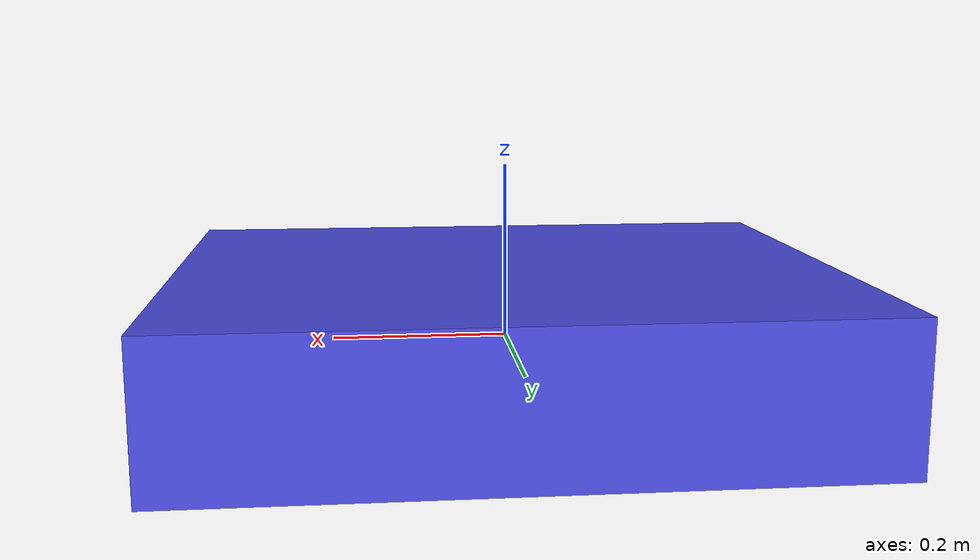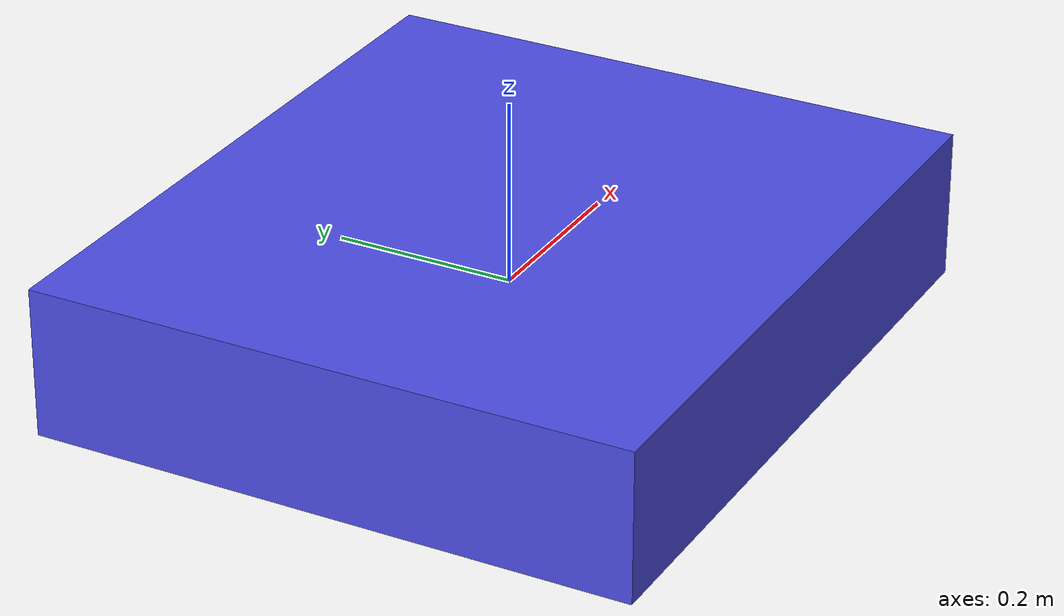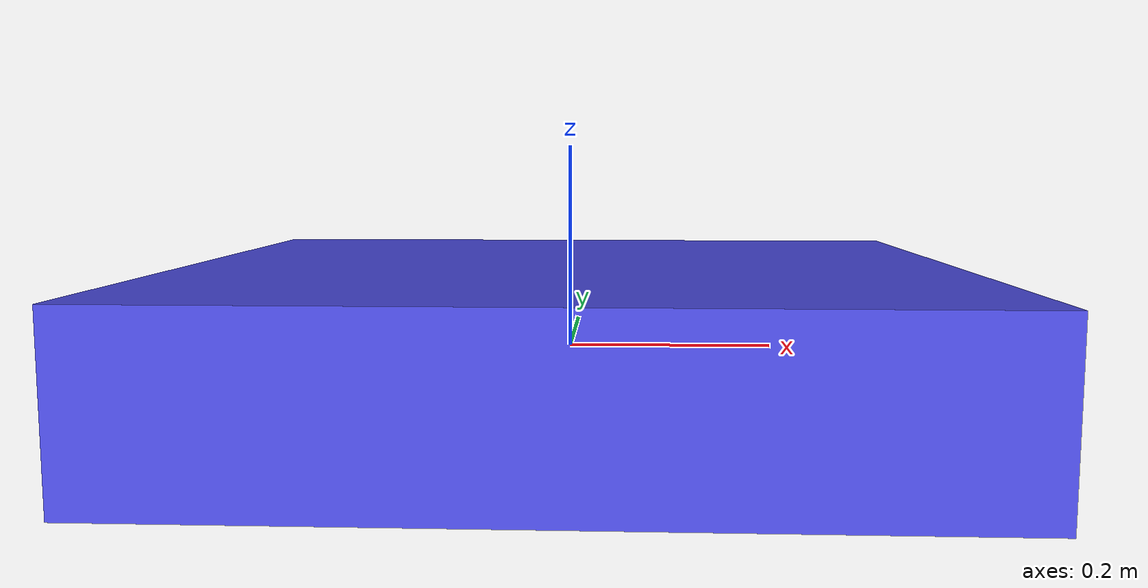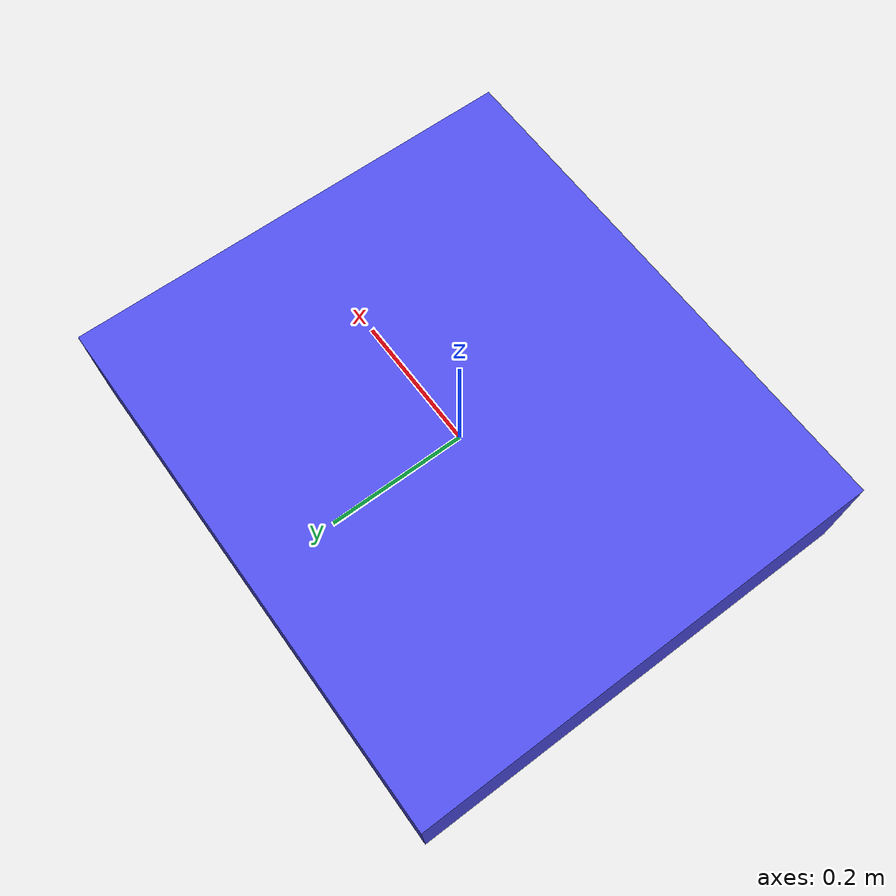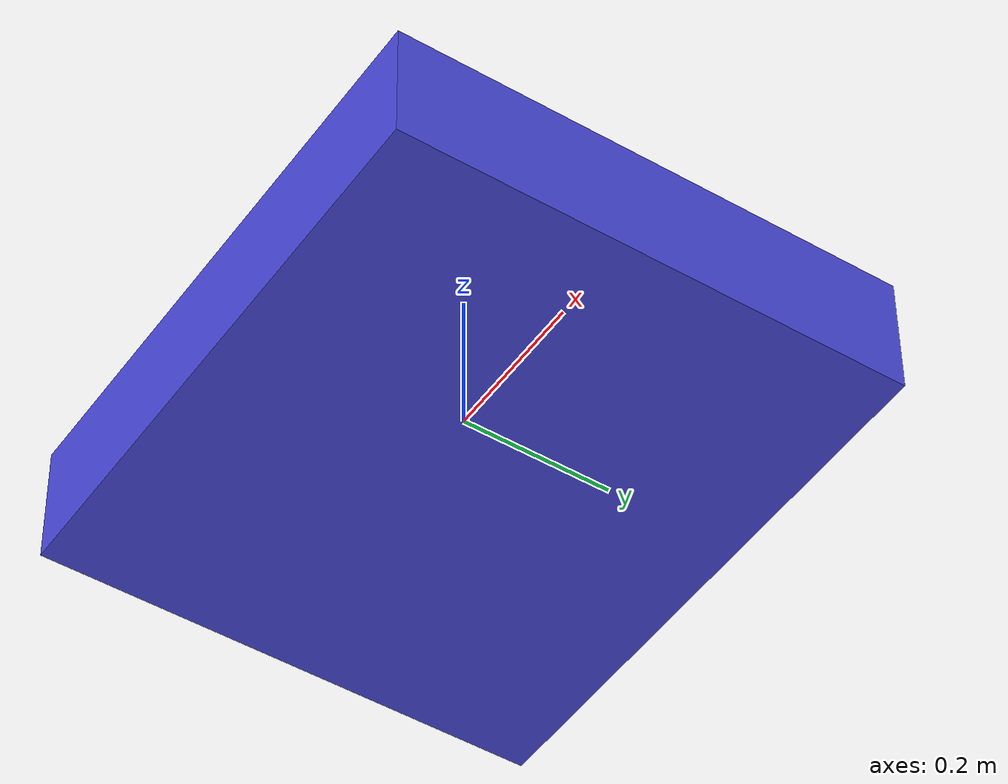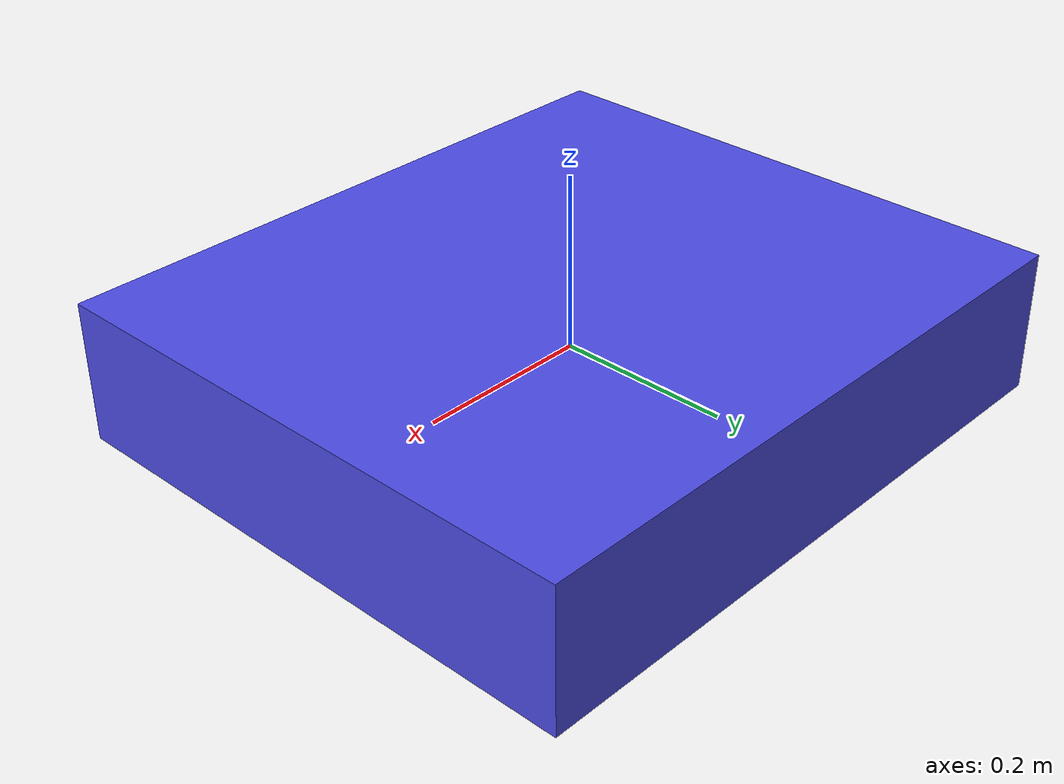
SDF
<?xml version='1.0'?>
<sdf version='1.6'>
  <model name='dark_blue_marker_box'>
    <link name='link'>
      <inertial>
        <mass>0.0822145</mass>
        <inertia>
          <ixx>0.00320009</ixx>
          <ixy>0</ixy>
          <ixz>0</ixz>
          <iyy>0.00408712</iyy>
          <iyz>0</iyz>
          <izz>0.00691769</izz>
        </inertia>
        <pose frame=''>0 0 0 0 -0 0</pose>
      </inertial>
      <self_collide>0</self_collide>
      <enable_wind>0</enable_wind>
      <kinematic>0</kinematic>
      <pose frame=''>0 0 0 0 -0 0</pose>
      <gravity>0</gravity>
      <visual name='visual'>
        <geometry>
          <box>
            <size>0.75471 0.663413 0.164218</size>
          </box>
        </geometry>
        <material>
          <script>
            <name>Gazebo/Grey</name>
            <uri>file://media/materials/scripts/gazebo.material</uri>
          </script>
          <shader type='vertex'>
            <normal_map>__default__</normal_map>
          </shader>
          <ambient>0.125 0.29 0.529 1</ambient>
          <diffuse>0.3 0.3 0.9 1</diffuse>
          <specular>0.01 0.01 0.01 1</specular>
          <emissive>0 0 0 1</emissive>
        </material>
        <pose frame=''>0 0 0 0 -0 0</pose>
        <transparency>0</transparency>
        <cast_shadows>1</cast_shadows>
      </visual>
    </link>
    <static>0</static>
    <allow_auto_disable>1</allow_auto_disable>
  </model>
</sdf>
